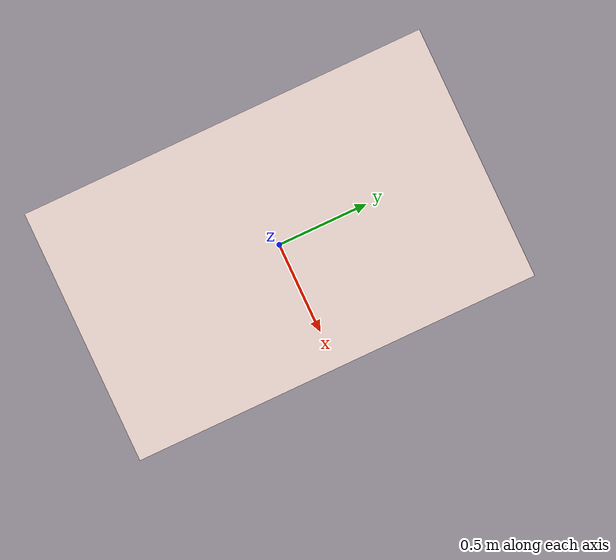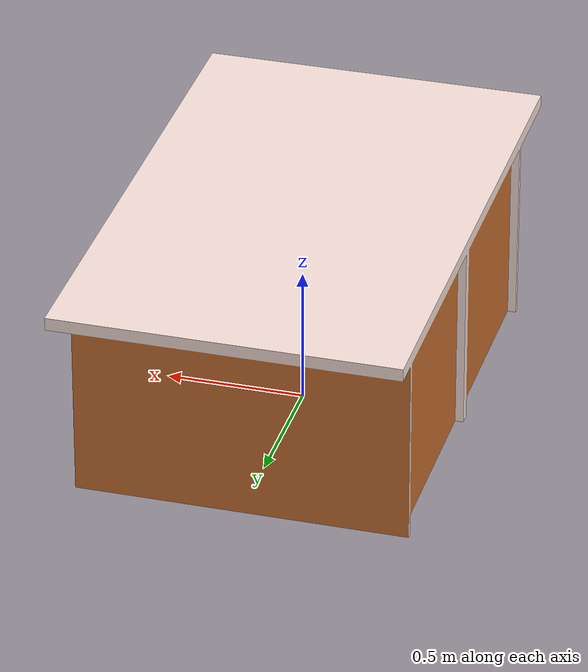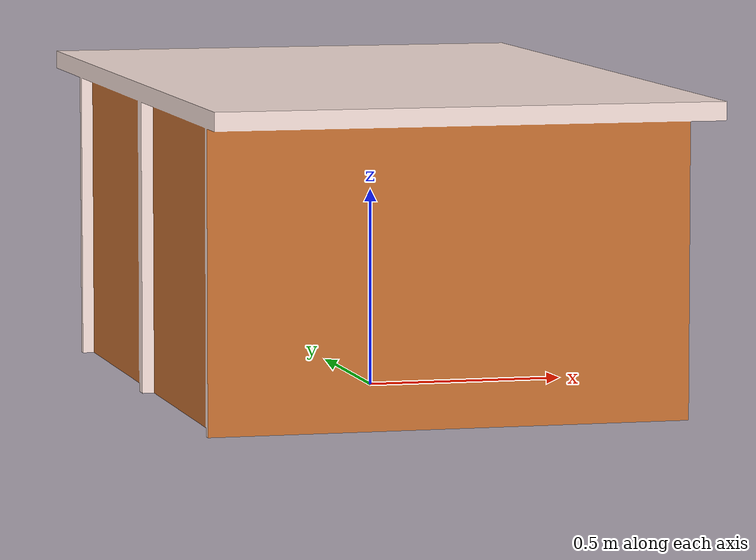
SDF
<?xml version="1.0" ?>
<sdf version='1.6'>
  <model name='Table'>
    <link name='Table'>
      <pose frame=''>0 0 0 0 -0 0</pose>
      <inertial>
        <pose frame=''>0 -0 0.40389 0 -0 0</pose>
        <mass>1464.6</mass>
        <inertia>
          <ixx>402.61</ixx>
          <ixy>3.4365e-14</ixy>
          <ixz>-1.3974e-14</ixz>
          <iyy>239.46</iyy>
          <iyz>2.4428e-14</iyz>
          <izz>483.74</izz>
        </inertia>
      </inertial>
      <collision name='Table_collision'>
        <pose frame=''>0 0 0 1.5708 -0 0</pose>
        <geometry>
          <mesh>
            <scale>1 1 1</scale>
            <uri>model://Table/meshes/Table_new.dae</uri>
          </mesh>
        </geometry>
      </collision>
      <visual name='Table_visual'>
        <pose frame=''>0 0 0 1.5708 -0 0</pose>
        <geometry>
          <mesh>
            <scale>1 1 1</scale>
            <uri>model://Table/meshes/Table_new.dae</uri>
          </mesh>
        </geometry>
      </visual>
    </link>
  </model>
</sdf>
